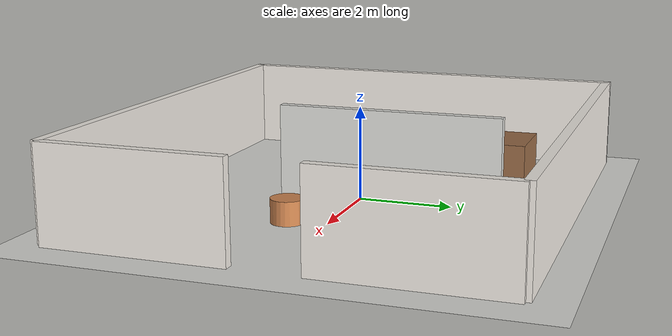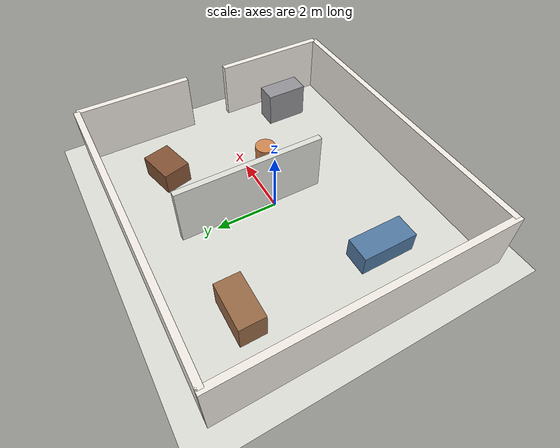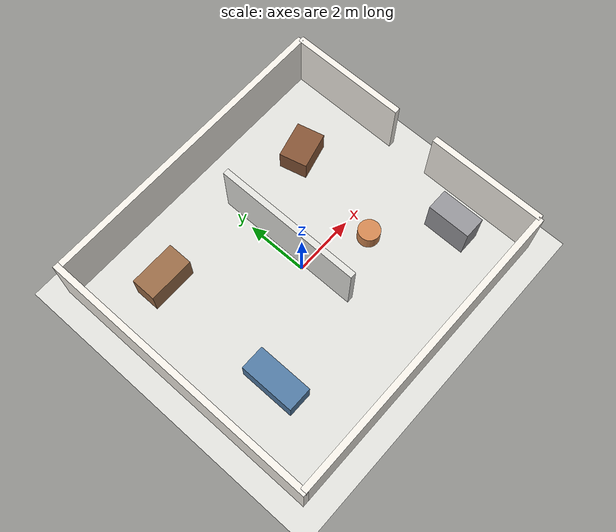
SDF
<?xml version="1.0"?>
<sdf version="1.8">
  <world name="agv_room">
    <physics type="ode">
      <max_step_size>0.002</max_step_size>
      <real_time_factor>1.0</real_time_factor>
      <real_time_update_rate>500</real_time_update_rate>
    </physics>

    <plugin name="gz::sim::systems::Physics" filename="gz-sim-physics-system"/>
    <plugin name="gz::sim::systems::UserCommands" filename="gz-sim-user-commands-system"/>
    <plugin name="gz::sim::systems::SceneBroadcaster" filename="gz-sim-scene-broadcaster-system"/>
    <plugin name="gz::sim::systems::Sensors" filename="gz-sim-sensors-system">
      <render_engine>ogre2</render_engine>
    </plugin>
    <plugin name="gz::sim::systems::Imu" filename="gz-sim-imu-system"/>

    <scene>
      <ambient>0.75 0.75 0.75 1</ambient>
      <background>0.95 0.95 0.95 1</background>
      <shadows>true</shadows>
    </scene>

    <gui fullscreen="0">
      <camera name="user_camera">
        <pose>-1.5 -8.5 7.5 0 0.62 1.57</pose>
        <view_controller>orbit</view_controller>
        <projection_type>perspective</projection_type>
      </camera>
    </gui>

    <gravity>0 0 -9.8</gravity>

    <light name="sun" type="directional">
      <pose>0 0 10 0 0 0</pose>
      <cast_shadows>true</cast_shadows>
      <intensity>1.0</intensity>
      <direction>-0.3 0.1 -0.95</direction>
      <diffuse>1 1 1 1</diffuse>
      <specular>0.2 0.2 0.2 1</specular>
      <attenuation>
        <range>100</range>
        <constant>0.9</constant>
        <linear>0.01</linear>
        <quadratic>0.001</quadratic>
      </attenuation>
    </light>

    <model name="floor">
      <static>true</static>
      <link name="link">
        <collision name="collision">
          <geometry>
            <plane>
              <normal>0 0 1</normal>
              <size>20 20</size>
            </plane>
          </geometry>
        </collision>
        <visual name="visual">
          <geometry>
            <plane>
              <normal>0 0 1</normal>
              <size>20 20</size>
            </plane>
          </geometry>
          <material>
            <ambient>0.87 0.87 0.85 1</ambient>
            <diffuse>0.87 0.87 0.85 1</diffuse>
          </material>
        </visual>
      </link>
    </model>

    <model name="north_wall">
      <static>true</static>
      <pose>0 4.5 1 0 0 0</pose>
      <link name="link">
        <collision name="collision">
          <geometry>
            <box><size>10 0.2 2</size></box>
          </geometry>
        </collision>
        <visual name="visual">
          <geometry>
            <box><size>10 0.2 2</size></box>
          </geometry>
          <material>
            <ambient>0.95 0.93 0.9 1</ambient>
            <diffuse>0.95 0.93 0.9 1</diffuse>
          </material>
        </visual>
      </link>
    </model>

    <model name="south_wall">
      <static>true</static>
      <pose>0 -4.5 1 0 0 0</pose>
      <link name="link">
        <collision name="collision">
          <geometry>
            <box><size>10 0.2 2</size></box>
          </geometry>
        </collision>
        <visual name="visual">
          <geometry>
            <box><size>10 0.2 2</size></box>
          </geometry>
          <material>
            <ambient>0.95 0.93 0.9 1</ambient>
            <diffuse>0.95 0.93 0.9 1</diffuse>
          </material>
        </visual>
      </link>
    </model>

    <model name="west_wall">
      <static>true</static>
      <pose>-5 0 1 0 0 0</pose>
      <link name="link">
        <collision name="collision">
          <geometry>
            <box><size>0.2 9.2 2</size></box>
          </geometry>
        </collision>
        <visual name="visual">
          <geometry>
            <box><size>0.2 9.2 2</size></box>
          </geometry>
          <material>
            <ambient>0.95 0.93 0.9 1</ambient>
            <diffuse>0.95 0.93 0.9 1</diffuse>
          </material>
        </visual>
      </link>
    </model>

    <model name="east_wall_top">
      <static>true</static>
      <pose>5 2.6 1 0 0 0</pose>
      <link name="link">
        <collision name="collision">
          <geometry>
            <box><size>0.2 3.8 2</size></box>
          </geometry>
        </collision>
        <visual name="visual">
          <geometry>
            <box><size>0.2 3.8 2</size></box>
          </geometry>
          <material>
            <ambient>0.95 0.93 0.9 1</ambient>
            <diffuse>0.95 0.93 0.9 1</diffuse>
          </material>
        </visual>
      </link>
    </model>

    <model name="east_wall_bottom">
      <static>true</static>
      <pose>5 -2.6 1 0 0 0</pose>
      <link name="link">
        <collision name="collision">
          <geometry>
            <box><size>0.2 3.8 2</size></box>
          </geometry>
        </collision>
        <visual name="visual">
          <geometry>
            <box><size>0.2 3.8 2</size></box>
          </geometry>
          <material>
            <ambient>0.95 0.93 0.9 1</ambient>
            <diffuse>0.95 0.93 0.9 1</diffuse>
          </material>
        </visual>
      </link>
    </model>

    <model name="center_partition">
      <static>true</static>
      <pose>0.2 0.7 1 0 0 0</pose>
      <link name="link">
        <collision name="collision">
          <geometry>
            <box><size>0.2 4.8 2</size></box>
          </geometry>
        </collision>
        <visual name="visual">
          <geometry>
            <box><size>0.2 4.8 2</size></box>
          </geometry>
          <material>
            <ambient>0.88 0.88 0.86 1</ambient>
            <diffuse>0.88 0.88 0.86 1</diffuse>
          </material>
        </visual>
      </link>
    </model>

    <model name="desk">
      <static>true</static>
      <pose>-3.0 2.7 0.45 0 0 0</pose>
      <link name="link">
        <collision name="collision">
          <geometry>
            <box><size>1.5 0.8 0.9</size></box>
          </geometry>
        </collision>
        <visual name="visual">
          <geometry>
            <box><size>1.5 0.8 0.9</size></box>
          </geometry>
          <material>
            <ambient>0.6 0.42 0.28 1</ambient>
            <diffuse>0.6 0.42 0.28 1</diffuse>
          </material>
        </visual>
      </link>
    </model>

    <model name="table">
      <static>true</static>
      <pose>2.8 2.5 0.38 0 0 0.25</pose>
      <link name="link">
        <collision name="collision">
          <geometry>
            <box><size>1.2 0.9 0.75</size></box>
          </geometry>
        </collision>
        <visual name="visual">
          <geometry>
            <box><size>1.2 0.9 0.75</size></box>
          </geometry>
          <material>
            <ambient>0.52 0.33 0.21 1</ambient>
            <diffuse>0.52 0.33 0.21 1</diffuse>
          </material>
        </visual>
      </link>
    </model>

    <model name="sofa">
      <static>true</static>
      <pose>-3.1 -1.8 0.35 0 0 1.57</pose>
      <link name="link">
        <collision name="collision">
          <geometry>
            <box><size>1.8 0.8 0.7</size></box>
          </geometry>
        </collision>
        <visual name="visual">
          <geometry>
            <box><size>1.8 0.8 0.7</size></box>
          </geometry>
          <material>
            <ambient>0.32 0.48 0.64 1</ambient>
            <diffuse>0.32 0.48 0.64 1</diffuse>
          </material>
        </visual>
      </link>
    </model>

    <model name="cabinet">
      <static>true</static>
      <pose>3.9 -2.5 0.6 0 0 0</pose>
      <link name="link">
        <collision name="collision">
          <geometry>
            <box><size>0.7 1.4 1.2</size></box>
          </geometry>
        </collision>
        <visual name="visual">
          <geometry>
            <box><size>0.7 1.4 1.2</size></box>
          </geometry>
          <material>
            <ambient>0.58 0.58 0.6 1</ambient>
            <diffuse>0.58 0.58 0.6 1</diffuse>
          </material>
        </visual>
      </link>
    </model>

    <model name="round_stool">
      <static>true</static>
      <pose>2.1 -0.8 0.25 0 0 0</pose>
      <link name="link">
        <collision name="collision">
          <geometry>
            <cylinder><radius>0.35</radius><length>0.5</length></cylinder>
          </geometry>
        </collision>
        <visual name="visual">
          <geometry>
            <cylinder><radius>0.35</radius><length>0.5</length></cylinder>
          </geometry>
          <material>
            <ambient>0.82 0.53 0.32 1</ambient>
            <diffuse>0.82 0.53 0.32 1</diffuse>
          </material>
        </visual>
      </link>
    </model>
  </world>
</sdf>
